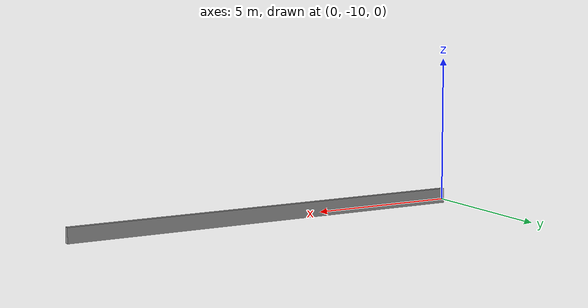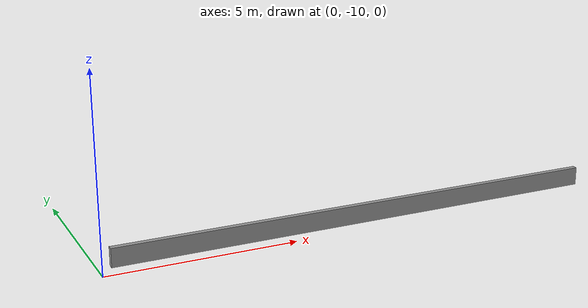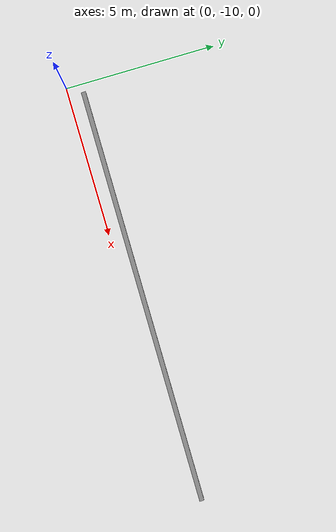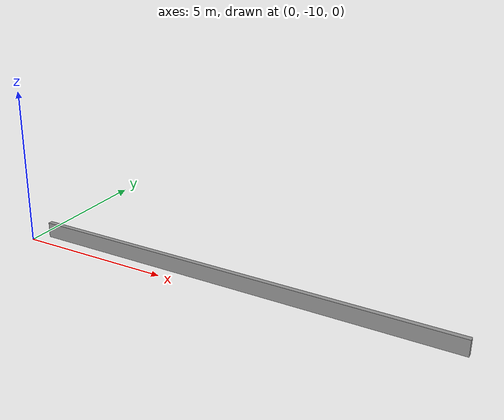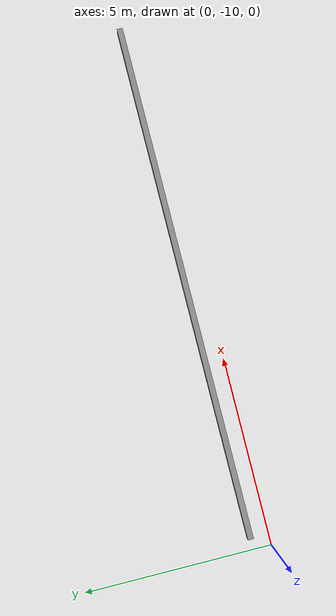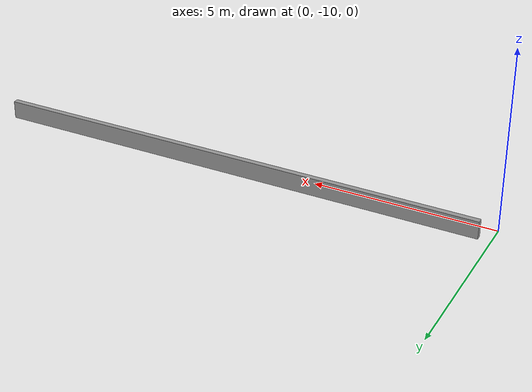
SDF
<?xml version='1.0'?>
<sdf version='1.7'>
  <model name='long_wall_white'>
    <pose>7.0415 -4.7855 0 0 -0 0</pose>
    <link name='Wall_4'>
      <collision name='Wall_4_Collision'>
        <geometry>
          <box>
            <size>13.75 0.15 0.5</size>
          </box>
        </geometry>
        <pose>0 0 0.25 0 -0 0</pose>
      </collision>
      <visual name='Wall_4_Visual'>
        <pose>0 0 0.25 0 -0 0</pose>
        <geometry>
          <box>
            <size>13.75 0.15 0.5</size>
          </box>
        </geometry>
        <material>
          <script>
            <uri>file://media/materials/scripts/gazebo.material</uri>
            <name>Gazebo/Grey</name>
          </script>
          <ambient>1 1 1 1</ambient>
        </material>
        <meta>
          <layer>0</layer>
        </meta>
      </visual>
      <pose>0.1665 -4.7105 0 0 -0 3.14159</pose>
    </link>
    <static>1</static>
  </model>
</sdf>
